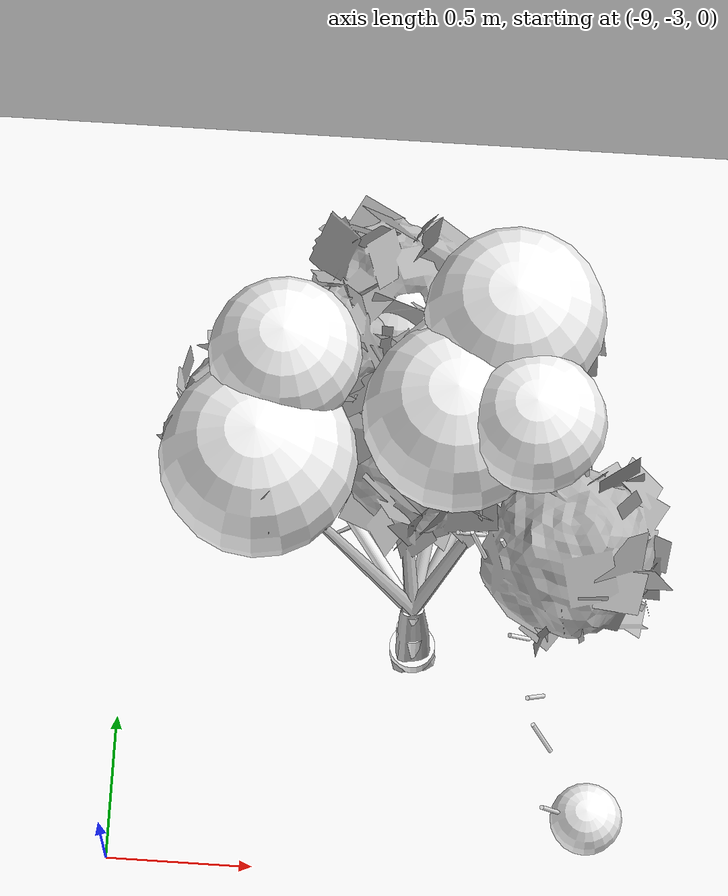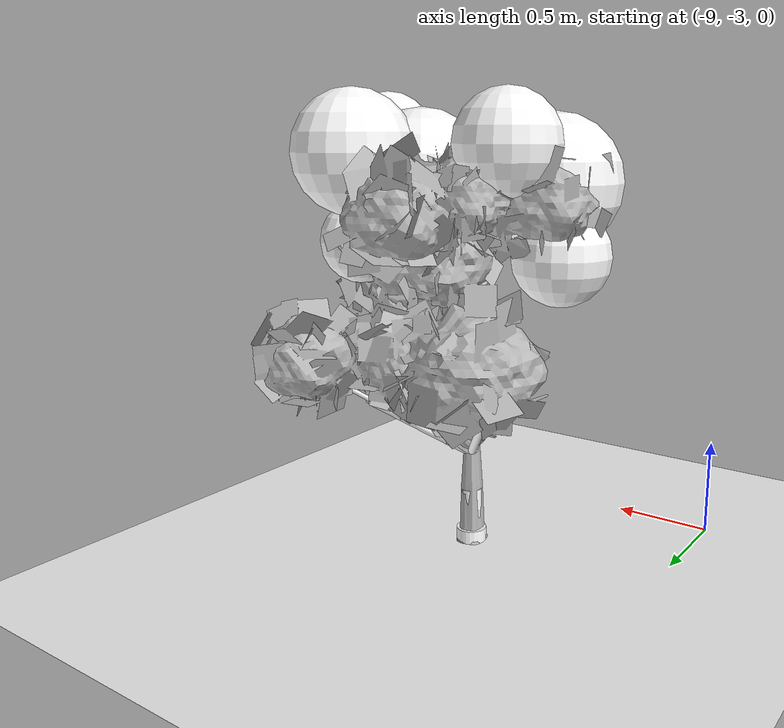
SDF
<sdf version="1.11">
 <world name="peach_orchard">
  <model name="ground">
   <static>true</static>
   <link name="link">
    <visual name="soil">
     <geometry><plane><normal>0 0 1</normal><size>32 22</size></plane></geometry>
     <material>
      <ambient>1 1 1 1</ambient>
      <diffuse>1 1 1 1</diffuse>
      <specular>0.1 0.1 0.1 1</specular>
      <pbr>
       <metal>
        <albedo_map>textures/soil_albedo.png</albedo_map>
        <normal_map type="tangent">textures/soil_normal.png</normal_map>
        <roughness>0.95</roughness>
        <metalness>0</metalness>
       </metal>
      </pbr>
     </material>
    </visual>
    <collision name="c_soil">
     <geometry><plane><normal>0 0 1</normal><size>32 22</size></plane></geometry>
    </collision>
   </link>
  </model>
  <model name="tree_r0_t2">
   <pose>-8 -2.2 0 0 0 0</pose>
   <static>true</static>
   <link name="link">
    <visual name="tree_mesh">
     <pose>0 0 0 0 0 0.147786</pose>
     <geometry>
      <mesh><uri>model://peach_sim/meshes/peach_tree_a.glb</uri><scale>0.963628 0.963628 0.963628</scale></mesh>
     </geometry>
    </visual>
    <visual name="trunk_0">
     <pose>0 0 0.145236 0 0 0</pose>
     <geometry><cylinder><radius>0.0541598</radius><length>0.290472</length></cylinder></geometry>
     <material>
      <ambient>1 1 1 1</ambient>
      <diffuse>1 1 1 1</diffuse>
      <specular>0.1 0.1 0.1 1</specular>
      <pbr>
       <metal>
        <albedo_map>textures/bark_albedo.png</albedo_map>
        <normal_map type="tangent">textures/bark_normal.png</normal_map>
        <roughness>0.9</roughness>
        <metalness>0</metalness>
       </metal>
      </pbr>
     </material>
    </visual>
    <collision name="c_trunk_0">
     <pose>0 0 0.145236 0 0 0</pose>
     <geometry><cylinder><radius>0.0541598</radius><length>0.290472</length></cylinder></geometry>
    </collision>
    <visual name="trunk_1">
     <pose>0 0 0.409301 0 0 0</pose>
     <geometry><cylinder><radius>0.0389951</radius><length>0.237659</length></cylinder></geometry>
     <material>
      <ambient>1 1 1 1</ambient>
      <diffuse>1 1 1 1</diffuse>
      <specular>0.1 0.1 0.1 1</specular>
      <pbr>
       <metal>
        <albedo_map>textures/bark_albedo.png</albedo_map>
        <normal_map type="tangent">textures/bark_normal.png</normal_map>
        <roughness>0.9</roughness>
        <metalness>0</metalness>
       </metal>
      </pbr>
     </material>
    </visual>
    <collision name="c_trunk_1">
     <pose>0 0 0.409301 0 0 0</pose>
     <geometry><cylinder><radius>0.0389951</radius><length>0.237659</length></cylinder></geometry>
    </collision>
    <visual name="root_flare">
     <pose>0 0 0.035 0 0 0</pose>
     <geometry><cylinder><radius>0.0785318</radius><length>0.07</length></cylinder></geometry>
     <material>
      <ambient>1 1 1 1</ambient>
      <diffuse>1 1 1 1</diffuse>
      <specular>0.1 0.1 0.1 1</specular>
      <pbr>
       <metal>
        <albedo_map>textures/bark_albedo.png</albedo_map>
        <normal_map type="tangent">textures/bark_normal.png</normal_map>
        <roughness>0.95</roughness>
        <metalness>0</metalness>
       </metal>
      </pbr>
     </material>
    </visual>
    <visual name="scaffold_0">
     <pose>0.048313 0.282444 0.73505 0 0.855053 1.40138</pose>
     <geometry><cylinder><radius>0.022</radius><length>0.759459</length></cylinder></geometry>
     <material>
      <ambient>1 1 1 1</ambient>
      <diffuse>1 1 1 1</diffuse>
      <specular>0.1 0.1 0.1 1</specular>
      <pbr>
       <metal>
        <albedo_map>textures/bark_albedo.png</albedo_map>
        <normal_map type="tangent">textures/bark_normal.png</normal_map>
        <roughness>0.9</roughness>
        <metalness>0</metalness>
       </metal>
      </pbr>
     </material>
    </visual>
    <collision name="c_scaffold_0">
     <pose>0.048313 0.282444 0.73505 0 0.855053 1.40138</pose>
     <geometry><cylinder><radius>0.022</radius><length>0.759459</length></cylinder></geometry>
    </collision>
    <visual name="branchlet_0_0">
     <pose>0.0173281 0.433899 0.856301 0 0.956595 1.94878</pose>
     <geometry><cylinder><radius>0.012</radius><length>0.263682</length></cylinder></geometry>
     <material>
      <ambient>1 1 1 1</ambient>
      <diffuse>1 1 1 1</diffuse>
      <specular>0.1 0.1 0.1 1</specular>
      <pbr>
       <metal>
        <albedo_map>textures/bark_albedo.png</albedo_map>
        <normal_map type="tangent">textures/bark_normal.png</normal_map>
        <roughness>0.9</roughness>
        <metalness>0</metalness>
       </metal>
      </pbr>
     </material>
    </visual>
    <visual name="branchlet_0_1">
     <pose>-0.000233723 0.282932 0.845263 0 0.622163 -2.65132</pose>
     <geometry><cylinder><radius>0.012</radius><length>0.208175</length></cylinder></geometry>
     <material>
      <ambient>1 1 1 1</ambient>
      <diffuse>1 1 1 1</diffuse>
      <specular>0.1 0.1 0.1 1</specular>
      <pbr>
       <metal>
        <albedo_map>textures/bark_albedo.png</albedo_map>
        <normal_map type="tangent">textures/bark_normal.png</normal_map>
        <roughness>0.9</roughness>
        <metalness>0</metalness>
       </metal>
      </pbr>
     </material>
    </visual>
    <visual name="scaffold_1">
     <pose>0.124411 0.246818 0.667356 0 0.989815 1.10391</pose>
     <geometry><cylinder><radius>0.022</radius><length>0.661304</length></cylinder></geometry>
     <material>
      <ambient>1 1 1 1</ambient>
      <diffuse>1 1 1 1</diffuse>
      <specular>0.1 0.1 0.1 1</specular>
      <pbr>
       <metal>
        <albedo_map>textures/bark_albedo.png</albedo_map>
        <normal_map type="tangent">textures/bark_normal.png</normal_map>
        <roughness>0.9</roughness>
        <metalness>0</metalness>
       </metal>
      </pbr>
     </material>
    </visual>
    <collision name="c_scaffold_1">
     <pose>0.124411 0.246818 0.667356 0 0.989815 1.10391</pose>
     <geometry><cylinder><radius>0.022</radius><length>0.661304</length></cylinder></geometry>
    </collision>
    <visual name="branchlet_1_0">
     <pose>0.349958 0.413587 0.827844 0 1.28119 0.0511361</pose>
     <geometry><cylinder><radius>0.012</radius><length>0.303485</length></cylinder></geometry>
     <material>
      <ambient>1 1 1 1</ambient>
      <diffuse>1 1 1 1</diffuse>
      <specular>0.1 0.1 0.1 1</specular>
      <pbr>
       <metal>
        <albedo_map>textures/bark_albedo.png</albedo_map>
        <normal_map type="tangent">textures/bark_normal.png</normal_map>
        <roughness>0.9</roughness>
        <metalness>0</metalness>
       </metal>
      </pbr>
     </material>
    </visual>
    <visual name="branchlet_1_1">
     <pose>0.241593 0.215837 0.799211 0 0.774963 -0.389145</pose>
     <geometry><cylinder><radius>0.012</radius><length>0.339992</length></cylinder></geometry>
     <material>
      <ambient>1 1 1 1</ambient>
      <diffuse>1 1 1 1</diffuse>
      <specular>0.1 0.1 0.1 1</specular>
      <pbr>
       <metal>
        <albedo_map>textures/bark_albedo.png</albedo_map>
        <normal_map type="tangent">textures/bark_normal.png</normal_map>
        <roughness>0.9</roughness>
        <metalness>0</metalness>
       </metal>
      </pbr>
     </material>
    </visual>
    <visual name="branchlet_1_2">
     <pose>0.27533 0.362228 0.770714 0 1.28247 0.157547</pose>
     <geometry><cylinder><radius>0.012</radius><length>0.212956</length></cylinder></geometry>
     <material>
      <ambient>1 1 1 1</ambient>
      <diffuse>1 1 1 1</diffuse>
      <specular>0.1 0.1 0.1 1</specular>
      <pbr>
       <metal>
        <albedo_map>textures/bark_albedo.png</albedo_map>
        <normal_map type="tangent">textures/bark_normal.png</normal_map>
        <roughness>0.9</roughness>
        <metalness>0</metalness>
       </metal>
      </pbr>
     </material>
    </visual>
    <visual name="scaffold_2">
     <pose>-0.199916 0.225274 0.697699 0 0.957875 2.29663</pose>
     <geometry><cylinder><radius>0.022</radius><length>0.73643</length></cylinder></geometry>
     <material>
      <ambient>1 1 1 1</ambient>
      <diffuse>1 1 1 1</diffuse>
      <specular>0.1 0.1 0.1 1</specular>
      <pbr>
       <metal>
        <albedo_map>textures/bark_albedo.png</albedo_map>
        <normal_map type="tangent">textures/bark_normal.png</normal_map>
        <roughness>0.9</roughness>
        <metalness>0</metalness>
       </metal>
      </pbr>
     </material>
    </visual>
    <collision name="c_scaffold_2">
     <pose>-0.199916 0.225274 0.697699 0 0.957875 2.29663</pose>
     <geometry><cylinder><radius>0.022</radius><length>0.73643</length></cylinder></geometry>
    </collision>
    <visual name="branchlet_2_0">
     <pose>-0.361213 0.388517 0.967516 0 0.162882 2.97324</pose>
     <geometry><cylinder><radius>0.012</radius><length>0.242036</length></cylinder></geometry>
     <material>
      <ambient>1 1 1 1</ambient>
      <diffuse>1 1 1 1</diffuse>
      <specular>0.1 0.1 0.1 1</specular>
      <pbr>
       <metal>
        <albedo_map>textures/bark_albedo.png</albedo_map>
        <normal_map type="tangent">textures/bark_normal.png</normal_map>
        <roughness>0.9</roughness>
        <metalness>0</metalness>
       </metal>
      </pbr>
     </material>
    </visual>
    <visual name="branchlet_2_1">
     <pose>-0.366917 0.449092 0.89957 0 0.931023 2.06821</pose>
     <geometry><cylinder><radius>0.012</radius><length>0.260428</length></cylinder></geometry>
     <material>
      <ambient>1 1 1 1</ambient>
      <diffuse>1 1 1 1</diffuse>
      <specular>0.1 0.1 0.1 1</specular>
      <pbr>
       <metal>
        <albedo_map>textures/bark_albedo.png</albedo_map>
        <normal_map type="tangent">textures/bark_normal.png</normal_map>
        <roughness>0.9</roughness>
        <metalness>0</metalness>
       </metal>
      </pbr>
     </material>
    </visual>
    <visual name="canopy_0">
     <pose>0.0496124 0.318871 1.63752 0 0 0</pose>
     <geometry><sphere><radius>0.21896</radius></sphere></geometry>
     <material>
      <ambient>1 1 1 1</ambient>
      <diffuse>1 1 1 1</diffuse>
      <specular>0.1 0.1 0.1 1</specular>
      <pbr>
       <metal>
        <albedo_map>textures/leaf_albedo.png</albedo_map>
        <normal_map type="tangent">textures/leaf_normal.png</normal_map>
        <roughness>0.85</roughness>
        <metalness>0</metalness>
       </metal>
      </pbr>
     </material>
    </visual>
    <collision name="c_canopy_0">
     <pose>0.0496124 0.318871 1.63752 0 0 0</pose>
     <geometry><sphere><radius>0.21896</radius></sphere></geometry>
    </collision>
    <visual name="canopy_1">
     <pose>0.366854 0.175132 2.07963 0 0 0</pose>
     <geometry><sphere><radius>0.22221</radius></sphere></geometry>
     <material>
      <ambient>1 1 1 1</ambient>
      <diffuse>1 1 1 1</diffuse>
      <specular>0.1 0.1 0.1 1</specular>
      <pbr>
       <metal>
        <albedo_map>textures/leaf_albedo.png</albedo_map>
        <normal_map type="tangent">textures/leaf_normal.png</normal_map>
        <roughness>0.85</roughness>
        <metalness>0</metalness>
       </metal>
      </pbr>
     </material>
    </visual>
    <collision name="c_canopy_1">
     <pose>0.366854 0.175132 2.07963 0 0 0</pose>
     <geometry><sphere><radius>0.22221</radius></sphere></geometry>
    </collision>
    <visual name="canopy_2">
     <pose>-0.558487 0.105052 1.56716 0 0 0</pose>
     <geometry><sphere><radius>0.23103</radius></sphere></geometry>
     <material>
      <ambient>1 1 1 1</ambient>
      <diffuse>1 1 1 1</diffuse>
      <specular>0.1 0.1 0.1 1</specular>
      <pbr>
       <metal>
        <albedo_map>textures/leaf_albedo.png</albedo_map>
        <normal_map type="tangent">textures/leaf_normal.png</normal_map>
        <roughness>0.85</roughness>
        <metalness>0</metalness>
       </metal>
      </pbr>
     </material>
    </visual>
    <collision name="c_canopy_2">
     <pose>-0.558487 0.105052 1.56716 0 0 0</pose>
     <geometry><sphere><radius>0.23103</radius></sphere></geometry>
    </collision>
    <visual name="canopy_3">
     <pose>0.283865 0.532788 2.02235 0 0 0</pose>
     <geometry><sphere><radius>0.287138</radius></sphere></geometry>
     <material>
      <ambient>1 1 1 1</ambient>
      <diffuse>1 1 1 1</diffuse>
      <specular>0.1 0.1 0.1 1</specular>
      <pbr>
       <metal>
        <albedo_map>textures/leaf_albedo.png</albedo_map>
        <normal_map type="tangent">textures/leaf_normal.png</normal_map>
        <roughness>0.85</roughness>
        <metalness>0</metalness>
       </metal>
      </pbr>
     </material>
    </visual>
    <visual name="canopy_4">
     <pose>-0.0840213 0.62293 1.75291 0 0 0</pose>
     <geometry><sphere><radius>0.203071</radius></sphere></geometry>
     <material>
      <ambient>1 1 1 1</ambient>
      <diffuse>1 1 1 1</diffuse>
      <specular>0.1 0.1 0.1 1</specular>
      <pbr>
       <metal>
        <albedo_map>textures/leaf_albedo.png</albedo_map>
        <normal_map type="tangent">textures/leaf_normal.png</normal_map>
        <roughness>0.85</roughness>
        <metalness>0</metalness>
       </metal>
      </pbr>
     </material>
    </visual>
    <visual name="canopy_5">
     <pose>-0.425969 0.356605 2.06173 0 0 0</pose>
     <geometry><sphere><radius>0.241297</radius></sphere></geometry>
     <material>
      <ambient>1 1 1 1</ambient>
      <diffuse>1 1 1 1</diffuse>
      <specular>0.1 0.1 0.1 1</specular>
      <pbr>
       <metal>
        <albedo_map>textures/leaf_albedo.png</albedo_map>
        <normal_map type="tangent">textures/leaf_normal.png</normal_map>
        <roughness>0.85</roughness>
        <metalness>0</metalness>
       </metal>
      </pbr>
     </material>
    </visual>
    <visual name="canopy_6">
     <pose>0.122608 0.230962 1.92253 0 0 0</pose>
     <geometry><sphere><radius>0.302949</radius></sphere></geometry>
     <material>
      <ambient>1 1 1 1</ambient>
      <diffuse>1 1 1 1</diffuse>
      <specular>0.1 0.1 0.1 1</specular>
      <pbr>
       <metal>
        <albedo_map>textures/leaf_albedo.png</albedo_map>
        <normal_map type="tangent">textures/leaf_normal.png</normal_map>
        <roughness>0.85</roughness>
        <metalness>0</metalness>
       </metal>
      </pbr>
     </material>
    </visual>
    <visual name="canopy_7">
     <pose>0.330429 0.438239 1.61 0 0 0</pose>
     <geometry><sphere><radius>0.196441</radius></sphere></geometry>
     <material>
      <ambient>1 1 1 1</ambient>
      <diffuse>1 1 1 1</diffuse>
      <specular>0.1 0.1 0.1 1</specular>
      <pbr>
       <metal>
        <albedo_map>textures/leaf_albedo.png</albedo_map>
        <normal_map type="tangent">textures/leaf_normal.png</normal_map>
        <roughness>0.85</roughness>
        <metalness>0</metalness>
       </metal>
      </pbr>
     </material>
    </visual>
    <visual name="canopy_8">
     <pose>-0.493933 0.0653293 1.89012 0 0 0</pose>
     <geometry><sphere><radius>0.312995</radius></sphere></geometry>
     <material>
      <ambient>1 1 1 1</ambient>
      <diffuse>1 1 1 1</diffuse>
      <specular>0.1 0.1 0.1 1</specular>
      <pbr>
       <metal>
        <albedo_map>textures/leaf_albedo.png</albedo_map>
        <normal_map type="tangent">textures/leaf_normal.png</normal_map>
        <roughness>0.85</roughness>
        <metalness>0</metalness>
       </metal>
      </pbr>
     </material>
    </visual>
    <visual name="canopy_9">
     <pose>0.159799 0.318257 1.87673 0 0 0</pose>
     <geometry><sphere><radius>0.283295</radius></sphere></geometry>
     <material>
      <ambient>1 1 1 1</ambient>
      <diffuse>1 1 1 1</diffuse>
      <specular>0.1 0.1 0.1 1</specular>
      <pbr>
       <metal>
        <albedo_map>textures/leaf_albedo.png</albedo_map>
        <normal_map type="tangent">textures/leaf_normal.png</normal_map>
        <roughness>0.85</roughness>
        <metalness>0</metalness>
       </metal>
      </pbr>
     </material>
    </visual>
    <visual name="foliage_0">
     <pose>0.401206 -0.0217564 1.43733 0 0 0</pose>
     <geometry><sphere><radius>0.118106</radius></sphere></geometry>
     <material>
      <ambient>1 1 1 1</ambient>
      <diffuse>1 1 1 1</diffuse>
      <specular>0.1 0.1 0.1 1</specular>
      <pbr>
       <metal>
        <albedo_map>textures/leaf_albedo.png</albedo_map>
        <normal_map type="tangent">textures/leaf_normal.png</normal_map>
        <roughness>0.85</roughness>
        <metalness>0</metalness>
       </metal>
      </pbr>
     </material>
    </visual>
    <visual name="foliage_4">
     <pose>0.604685 -0.868779 1.23857 0 0 0</pose>
     <geometry><sphere><radius>0.115795</radius></sphere></geometry>
     <material>
      <ambient>1 1 1 1</ambient>
      <diffuse>1 1 1 1</diffuse>
      <specular>0.1 0.1 0.1 1</specular>
      <pbr>
       <metal>
        <albedo_map>textures/leaf_albedo.png</albedo_map>
        <normal_map type="tangent">textures/leaf_normal.png</normal_map>
        <roughness>0.85</roughness>
        <metalness>0</metalness>
       </metal>
      </pbr>
     </material>
    </visual>
    <visual name="foliage_8">
     <pose>0.158958 0.167781 1.37478 0 0 0</pose>
     <geometry><sphere><radius>0.110881</radius></sphere></geometry>
     <material>
      <ambient>1 1 1 1</ambient>
      <diffuse>1 1 1 1</diffuse>
      <specular>0.1 0.1 0.1 1</specular>
      <pbr>
       <metal>
        <albedo_map>textures/leaf_albedo.png</albedo_map>
        <normal_map type="tangent">textures/leaf_normal.png</normal_map>
        <roughness>0.85</roughness>
        <metalness>0</metalness>
       </metal>
      </pbr>
     </material>
    </visual>
    <visual name="twig_0">
     <pose>0.308683 -0.08325 1.52539 0 0.334306 2.60372</pose>
     <geometry><cylinder><radius>0.007</radius><length>0.17971</length></cylinder></geometry>
     <material>
      <ambient>1 1 1 1</ambient>
      <diffuse>1 1 1 1</diffuse>
      <specular>0.1 0.1 0.1 1</specular>
      <pbr>
       <metal>
        <albedo_map>textures/bark_albedo.png</albedo_map>
        <normal_map type="tangent">textures/bark_normal.png</normal_map>
        <roughness>0.9</roughness>
        <metalness>0</metalness>
       </metal>
      </pbr>
     </material>
    </visual>
    <visual name="twig_1">
     <pose>0.359068 -0.324554 1.39742 0 0.709421 -2.95023</pose>
     <geometry><cylinder><radius>0.007</radius><length>0.100822</length></cylinder></geometry>
     <material>
      <ambient>1 1 1 1</ambient>
      <diffuse>1 1 1 1</diffuse>
      <specular>0.1 0.1 0.1 1</specular>
      <pbr>
       <metal>
        <albedo_map>textures/bark_albedo.png</albedo_map>
        <normal_map type="tangent">textures/bark_normal.png</normal_map>
        <roughness>0.9</roughness>
        <metalness>0</metalness>
       </metal>
      </pbr>
     </material>
    </visual>
    <visual name="twig_2">
     <pose>0.419833 -0.531276 1.44291 0 0.454848 -2.37175</pose>
     <geometry><cylinder><radius>0.007</radius><length>0.162556</length></cylinder></geometry>
     <material>
      <ambient>1 1 1 1</ambient>
      <diffuse>1 1 1 1</diffuse>
      <specular>0.1 0.1 0.1 1</specular>
      <pbr>
       <metal>
        <albedo_map>textures/bark_albedo.png</albedo_map>
        <normal_map type="tangent">textures/bark_normal.png</normal_map>
        <roughness>0.9</roughness>
        <metalness>0</metalness>
       </metal>
      </pbr>
     </material>
    </visual>
    <visual name="twig_3">
     <pose>0.447411 -0.658911 1.42417 0 0.478347 2.52714</pose>
     <geometry><cylinder><radius>0.007</radius><length>0.164625</length></cylinder></geometry>
     <material>
      <ambient>1 1 1 1</ambient>
      <diffuse>1 1 1 1</diffuse>
      <specular>0.1 0.1 0.1 1</specular>
      <pbr>
       <metal>
        <albedo_map>textures/bark_albedo.png</albedo_map>
        <normal_map type="tangent">textures/bark_normal.png</normal_map>
        <roughness>0.9</roughness>
        <metalness>0</metalness>
       </metal>
      </pbr>
     </material>
    </visual>
    <visual name="twig_4">
     <pose>0.485902 -0.886132 1.40257 0 0.418858 -2.80404</pose>
     <geometry><cylinder><radius>0.007</radius><length>0.138551</length></cylinder></geometry>
     <material>
      <ambient>1 1 1 1</ambient>
      <diffuse>1 1 1 1</diffuse>
      <specular>0.1 0.1 0.1 1</specular>
      <pbr>
       <metal>
        <albedo_map>textures/bark_albedo.png</albedo_map>
        <normal_map type="tangent">textures/bark_normal.png</normal_map>
        <roughness>0.9</roughness>
        <metalness>0</metalness>
       </metal>
      </pbr>
     </material>
    </visual>
    <visual name="twig_5">
     <pose>0.212047 -0.0893982 1.60952 0 0.275068 2.66126</pose>
     <geometry><cylinder><radius>0.007</radius><length>0.189896</length></cylinder></geometry>
     <material>
      <ambient>1 1 1 1</ambient>
      <diffuse>1 1 1 1</diffuse>
      <specular>0.1 0.1 0.1 1</specular>
      <pbr>
       <metal>
        <albedo_map>textures/bark_albedo.png</albedo_map>
        <normal_map type="tangent">textures/bark_normal.png</normal_map>
        <roughness>0.9</roughness>
        <metalness>0</metalness>
       </metal>
      </pbr>
     </material>
    </visual>
    <visual name="twig_6">
     <pose>0.185842 -0.0481296 1.59145 0 0.492668 -2.566</pose>
     <geometry><cylinder><radius>0.007</radius><length>0.211188</length></cylinder></geometry>
     <material>
      <ambient>1 1 1 1</ambient>
      <diffuse>1 1 1 1</diffuse>
      <specular>0.1 0.1 0.1 1</specular>
      <pbr>
       <metal>
        <albedo_map>textures/bark_albedo.png</albedo_map>
        <normal_map type="tangent">textures/bark_normal.png</normal_map>
        <roughness>0.9</roughness>
        <metalness>0</metalness>
       </metal>
      </pbr>
     </material>
    </visual>
    <visual name="twig_7">
     <pose>0.204982 0.0671097 1.61066 0 0.303582 2.09155</pose>
     <geometry><cylinder><radius>0.007</radius><length>0.213717</length></cylinder></geometry>
     <material>
      <ambient>1 1 1 1</ambient>
      <diffuse>1 1 1 1</diffuse>
      <specular>0.1 0.1 0.1 1</specular>
      <pbr>
       <metal>
        <albedo_map>textures/bark_albedo.png</albedo_map>
        <normal_map type="tangent">textures/bark_normal.png</normal_map>
        <roughness>0.9</roughness>
        <metalness>0</metalness>
       </metal>
      </pbr>
     </material>
    </visual>
    <visual name="twig_8">
     <pose>0.142597 0.116641 1.61296 0 0.579904 -2.90107</pose>
     <geometry><cylinder><radius>0.007</radius><length>0.213363</length></cylinder></geometry>
     <material>
      <ambient>1 1 1 1</ambient>
      <diffuse>1 1 1 1</diffuse>
      <specular>0.1 0.1 0.1 1</specular>
      <pbr>
       <metal>
        <albedo_map>textures/bark_albedo.png</albedo_map>
        <normal_map type="tangent">textures/bark_normal.png</normal_map>
        <roughness>0.9</roughness>
        <metalness>0</metalness>
       </metal>
      </pbr>
     </material>
    </visual>
   </link>
  </model>
 </world>
</sdf>
